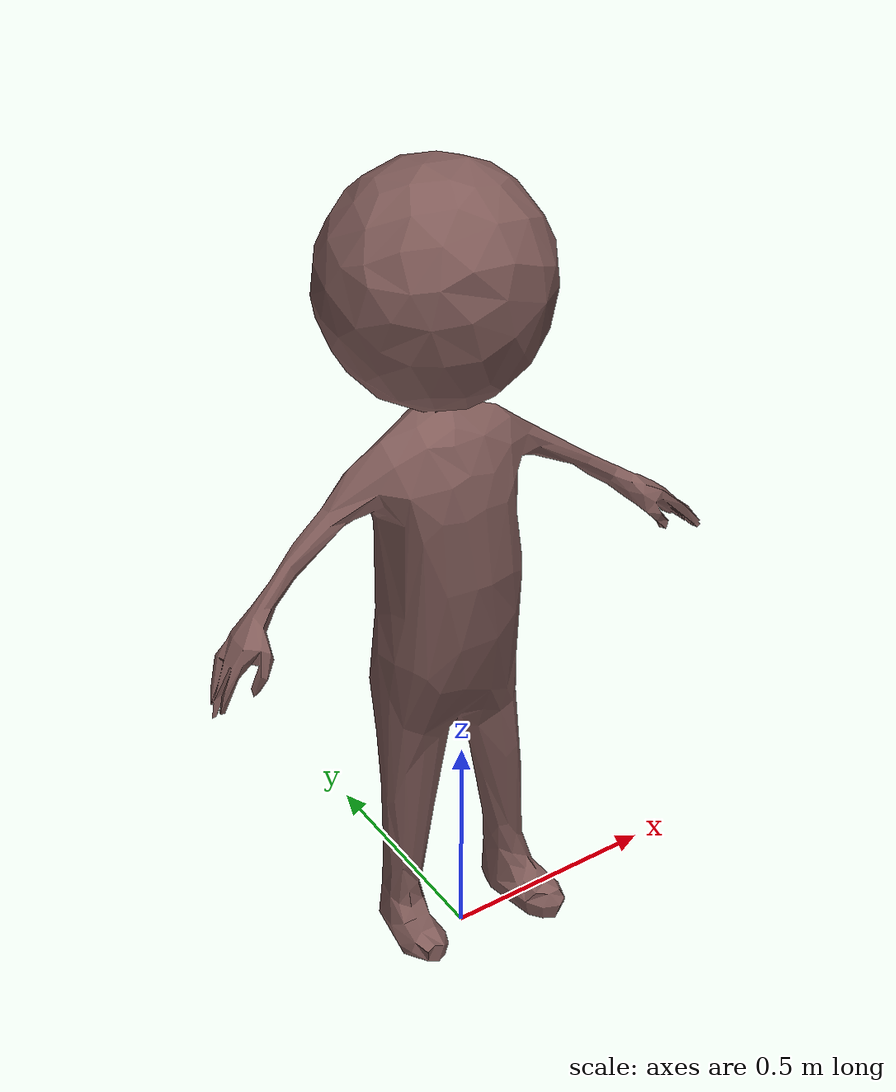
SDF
<?xml version="1.0" ?>
<sdf version="1.5">
  <model name="victim_A_cold">
    <static>true</static>
    <self_collide>false</self_collide>
    <pose>0 0 0 0 0 0</pose>
    <link name="link">
      <collision name="collision">
        <geometry>
          <mesh>
            <uri>model://victim_A_cold/victim_A.dae</uri>
            <scale>1 1 1</scale>
          </mesh>
        </geometry>
      </collision>
      <visual name="visual">
        <geometry>
          <mesh>
            <uri>model://victim_A_cold/victim_A.dae</uri>
            <scale>1 1 1</scale>
          </mesh>
        </geometry>
        <cast_shadows>false</cast_shadows>
        <!-- PINK -->
        <material>
          <emissive>0.5 0.355 0.345 1</emissive>
          <ambient>0.5 0.355 0.345 1</ambient>
          <diffuse>0.5 0.355 0.345 1</diffuse>
          <specular>0 0 0 0</specular>
        </material> -->
      </visual>
    </link>
  </model>
</sdf>
